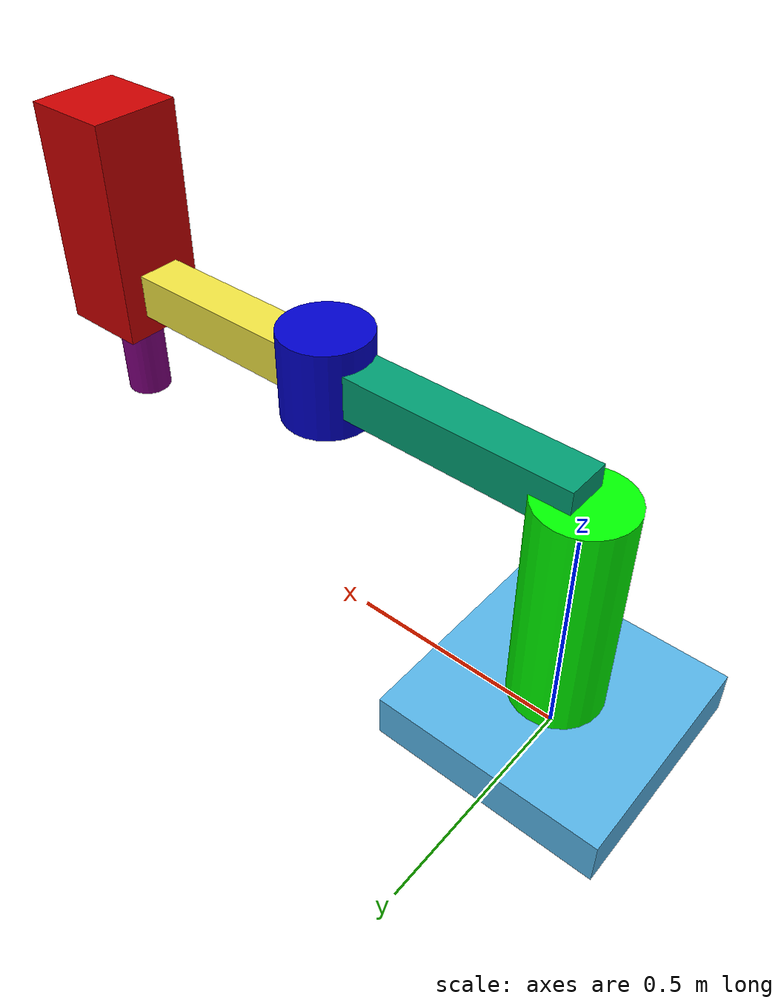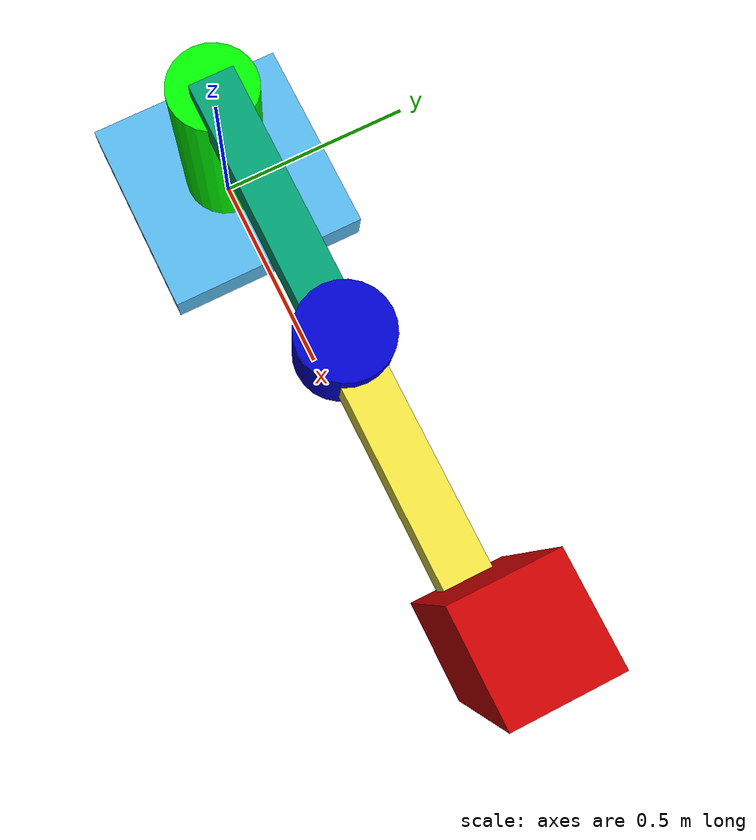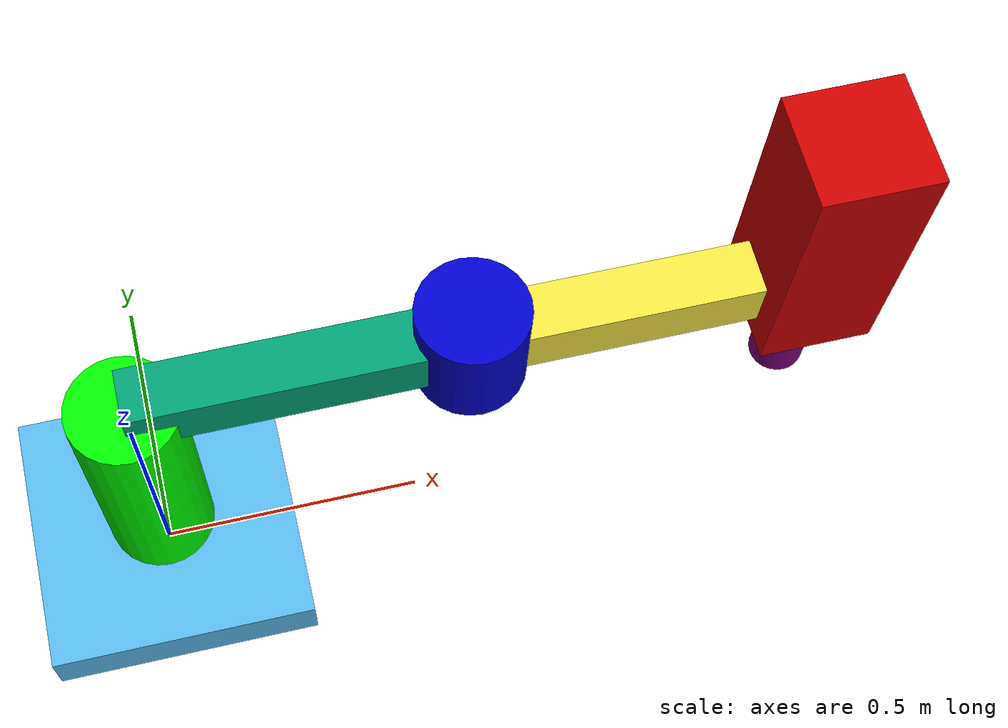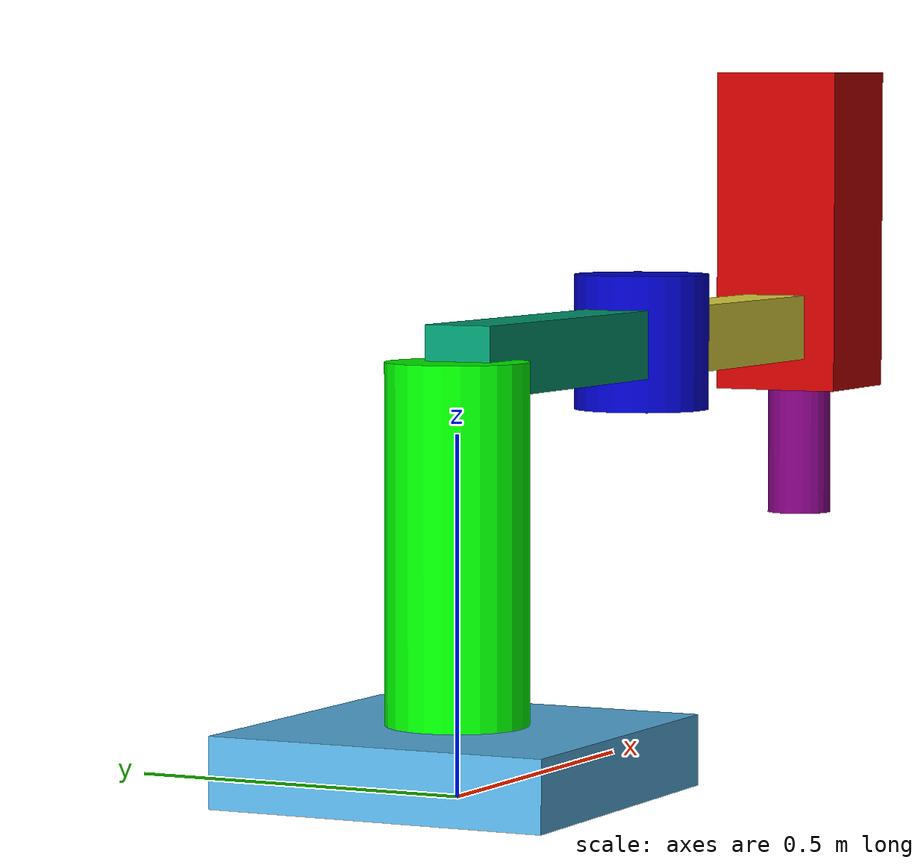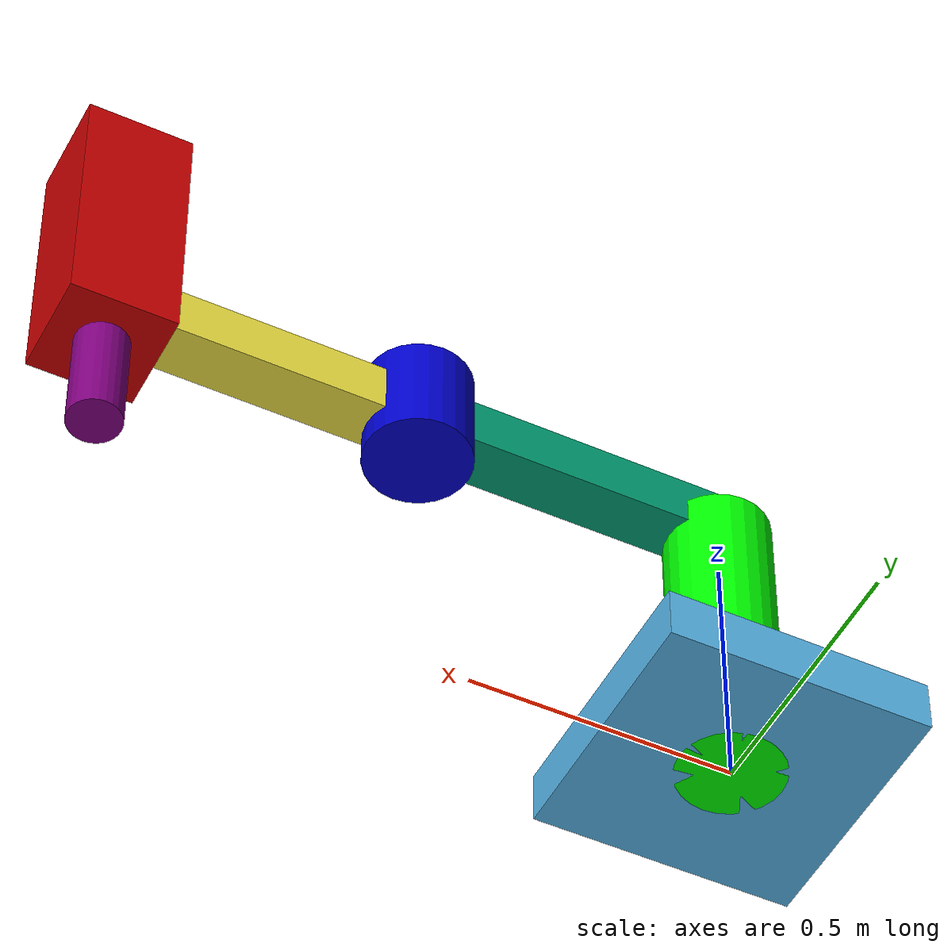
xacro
<?xml version="1.0"?>
<robot name="scara_robot" xmlns:xacro="http://www.ros.org/wiki/xacro">

    <!-- Joint colors-->
    <material name="blue">
        <color rgba="0 0 0.8 1"/>
    </material>
    <material name="red">
        <color rgba="0.8 0 0 1"/>
    </material>
    <material name="green">
        <color rgba="0.0 1.0 0.0 1.0"/>
    </material>
    <material name="purple">
        <color rgba="0.5 0.0 0.5 1.0"/>
    </material>

    <!-- Robot dimensions -->
    <xacro:property name="d1" value=".6" />
    <xacro:property name="a1" value=".6" />
    <xacro:property name="a2" value=".6" />
    <xacro:property name="d3" value=".3" />

    <!-- EE cylinder measurement, radius and length -->
    <xacro:property name="ee_r" value=".05" />
    <xacro:property name="ee_l" value="${d3}" />

    <!-- Default revolute joint radius and length-->
    <xacro:property name="cyl_joint_r" value=".1" />
    <xacro:property name="cyl_joint_l" value=".2" />

    <!-- Default prismatic length of each side of a square -->
    <xacro:property name="prismatic_link_a" value=".2" />
    <!-- Default prismatic extention limit-->
    <xacro:property name="presmatic_extend_range" value=".3" />

    <!-- Default link arm width of a side of a square-->
    <xacro:property name="link_arm_a" value=".1" />

    <!--
            Model setup
    -->

    <!-- Base of the robot -->
    <xacro:property name="base_link_l" value=".5" />
    <xacro:property name="base_link_w" value=".5" />
    <xacro:property name="base_link_h" value="0.1" />

    <!-- Joint 1 visual-->
    <xacro:property name="link1_l" value="${d1}" />
    <xacro:property name="link1_r" value="${cyl_joint_r}" />
    <!-- DH data of joint 1-->
    <xacro:property name="link1_theta" value="0" />
    <xacro:property name="link1_d" value="0" />
    <xacro:property name="link1_a" value="0" />
    <xacro:property name="link1_alpha" value="0" />
    <!-- Joint 1 arm visual-->
    <xacro:property name="link1_arm_l" value="${a1}" />
    <xacro:property name="link1_arm_w" value="${link_arm_a}" />
    <xacro:property name="link1_arm_h" value="${link_arm_a}" />

    <!-- Joint 2 visual-->
    <xacro:property name="link2_l" value="${cyl_joint_l}" />
    <xacro:property name="link2_r" value="${cyl_joint_r}" />
    <!-- DH data of joint 2-->
    <xacro:property name="link2_theta" value="0" />
    <xacro:property name="link2_d" value="0" />
    <xacro:property name="link2_a" value="${a1}" />
    <xacro:property name="link2_alpha" value="0" />
    <!-- Joint 2 arm visual-->
    <xacro:property name="link2_arm_l" value="${a2}" />
    <xacro:property name="link2_arm_w" value="${link_arm_a}" />
    <xacro:property name="link2_arm_h" value="${link_arm_a}" />

    <!-- Joint 3 visual-->
    <xacro:property name="link3_arm_l" value="${prismatic_link_a}" />
    <xacro:property name="link3_arm_w" value="${prismatic_link_a}" />
    <xacro:property name="link3_arm_h" value="${prismatic_link_a + presmatic_extend_range}" />
    <!-- DH data of joint 3-->
    <xacro:property name="link3_theta" value="0" />
    <xacro:property name="link3_d" value="0" />
    <xacro:property name="link3_a" value="${a2}" />
    <xacro:property name="link3_alpha" value="0" />
    <!-- Prismatic extend limit -->
    <xacro:property name="link3_limit_lower" value="0" />
    <xacro:property name="link3_limit_upper" value="${presmatic_extend_range}" />

    <!-- EE 4 visual -->
    <xacro:property name="link4_l" value="${ee_l}" />
    <xacro:property name="link4_r" value="${ee_r}" />
    <!-- DH data of joint 4 -->
    <xacro:property name="link4_theta" value="0" />
    <xacro:property name="link4_d" value="${-d3}" />
    <xacro:property name="link4_a" value="0" />
    <xacro:property name="link4_alpha" value="${pi}" />

    <!--
            Inertial template
    -->
    <xacro:macro name="inertial_box" params="mass x y z *origin">
        <inertial>
            <xacro:insert_block name="origin"/>
            <mass value="${mass}" />
            <inertia ixx="${(1/12) * mass * (y*y+z*z)}" ixy="0.0" ixz="0.0"
                    iyy="${(1/12) * mass * (x*x+z*z)}" iyz="0.0"
                    izz="${(1/12) * mass * (x*x+y*y)}" />
        </inertial>
    </xacro:macro>

    <xacro:macro name="inertial_cylinder" params="mass length radius *origin">
        <inertial>
            <xacro:insert_block name="origin"/>
            <mass value="${mass}" />
            <inertia ixx="${(1/12) * mass * (3*radius*radius + length*length)}" ixy="0.0" ixz="0.0"
                    iyy="${(1/12) * mass * (3*radius*radius + length*length)}" iyz="0.0"
                    izz="${(1/2) * mass * (radius*radius)}" />
        </inertial>
    </xacro:macro>

    <!--
            Modeling the robot
    -->

    <link name="world_link"/>

    <joint name="world_to_base" type="fixed">
    <parent link="world_link"/>
    <child link="base_link"/>
    <origin xyz="0 0 0" rpy="0 0 0"/>
    </joint>

    <link name="base_link">
        <visual>
            <origin rpy="0 0 0" xyz="0 0 ${base_link_h/2}" />
            <geometry>
                <box size="${base_link_l} ${base_link_w} ${base_link_h}" />
            </geometry>
        </visual>
        <collision>
            <origin rpy="0 0 0" xyz="0 0 ${base_link_h/2}" />
            <geometry>
                <box size="${base_link_l} ${base_link_w} ${base_link_h}" />
            </geometry>
        </collision>
        <xacro:inertial_box mass="100" x="${base_link_l}" y="${base_link_w}" z="${base_link_h}">
            <origin rpy="0 0 0" xyz="0 0 ${base_link_h/2}" />
        </xacro:inertial_box>
    </link>

    <joint name="joint1" type="revolute">
        <parent link="base_link" />
        <child link="link1" />
        <origin rpy="0 0 0" xyz="0 0 ${link1_d}" />
        <axis xyz="0 0 1" />
        <limit lower="${-5*pi/6}" upper="${5*pi/6}" effort="100" velocity="5.0" />
        <dynamics damping="0.1" friction="0.0"/>
    </joint>

    <link name="link1">
        <!-- Cylinder joint visual -->
        <visual>
            <origin rpy="0 0 0" xyz="0 0 ${link1_l/2}" />
            <geometry>
                <cylinder length="${link1_l}" radius="${link1_r}" />
            </geometry>
            <material name="green"/>
        </visual>
        <collision>
            <origin rpy="0 0 0" xyz="0 0 ${link1_l/2 + base_link_h/2}" />
            <geometry>
                <cylinder length="${link1_l - base_link_h}" radius="${link1_r}" />
            </geometry>
        </collision>
        <xacro:inertial_cylinder mass="1" length="${link1_l}" radius="${link1_r}">
            <origin rpy="0 0 0" xyz="0 0 ${link1_l/2}" />
        </xacro:inertial_cylinder>

        <!-- Arm visual -->
        <visual>
            <origin rpy="0 0 0" xyz="${link1_arm_l/2} 0 ${link1_l}" />
            <geometry>
                <box size="${link1_arm_l} ${link1_arm_w} ${link1_arm_h}" />
            </geometry>
        </visual>
        <collision>
            <origin rpy="0 0 0" xyz="${link1_arm_l/2} 0 ${link1_l}" />
            <geometry>
                <box size="${link1_arm_l - cyl_joint_r * 2} ${link1_arm_w} ${link1_arm_h}" />
            </geometry>
        </collision>
        <xacro:inertial_box mass="0.5" x="${link1_arm_l}" y="${link1_arm_w}" z="${link1_arm_h}">
            <origin rpy="0 0 0" xyz="${link1_arm_l/2} 0 0" />
        </xacro:inertial_box>
    </link>

    <link name="link2">

        <!-- Cylinder joint  visual -->
        <visual>
            <origin rpy="0 0 0" xyz="0 0 0" />
            <geometry>
                <cylinder length="${link2_l}" radius="${link2_r}" />
            </geometry>
            <material name="blue"/>
        </visual>
        <collision>
            <origin rpy="0 0 0" xyz="0 0 0" />
            <geometry>
                <cylinder length="${link2_l}" radius="${link2_r}" />
            </geometry>
        </collision>
        <xacro:inertial_cylinder mass="0.5" length="${link2_l}" radius="${link2_r}">
            <origin rpy="0 0 0" xyz="0 0 0" />
        </xacro:inertial_cylinder>

        <!-- Arm visual -->
        <visual>
            <origin rpy="0 0 0" xyz="${link2_arm_l/2} 0 0" />
            <geometry>
                <box size="${link2_arm_l} ${link2_arm_w} ${link2_arm_h}" />
            </geometry>
        </visual>
        <collision>
            <origin rpy="0 0 0" xyz="${link2_arm_l/2} 0 0" />
            <geometry>
                <box size="${link2_arm_l - prismatic_link_a} ${link2_arm_w} ${link2_arm_h}" />
            </geometry>
        </collision>
        <xacro:inertial_box mass="0.5" x="${link2_arm_l}" y="${link2_arm_w}" z="${link2_arm_h}">
            <origin rpy="0 0 0" xyz="${link2_arm_l/2} 0 0" />
        </xacro:inertial_box>
    </link>

    <joint name="joint2" type="revolute">
        <parent link="link1" />
        <child link="link2" />
        <origin rpy="0 0 0" xyz="${a1} 0 ${d1}" />
        <limit lower="${-pi/2}" upper="${pi/2}" effort="100" velocity="1.0" />
        <axis xyz="0 0 1" />
    </joint>

    <link name="link3">
        <!-- Prismatic joint visual -->
        <visual>
            <origin rpy="0 0 0" xyz="0 0 ${link3_arm_h/2 - prismatic_link_a/2}" />
            <geometry>
                <box size="${link3_arm_l} ${link3_arm_w} ${link3_arm_h}" />
            </geometry>
            <material name="red"/>
        </visual>
        <collision>
            <origin rpy="0 0 0" xyz="0 0 ${link3_arm_h/2 - prismatic_link_a/2}" />
            <geometry>
                <box size="${link3_arm_l} ${link3_arm_w} ${link3_arm_h}" />
            </geometry>
        </collision>
        <xacro:inertial_box mass="0.5" x="${link3_arm_l}" y="${link3_arm_w}" z="${link3_arm_h}">
            <origin rpy="0 0 0" xyz="0 0 ${link3_arm_h/2 - prismatic_link_a/2}" />
        </xacro:inertial_box>
    </link>

    <joint name="joint3" type="prismatic">
        <parent link="link2" />
        <child link="link3" />
        <origin rpy="0 0 0" xyz="${link3_a} 0 0" />
        <limit lower="${link3_limit_lower}" upper="${link3_limit_upper}" effort="100" velocity="5" />
        <axis xyz="0 0 -1" />
    </joint>

    <link name="link4">

        <!-- Cylinder visual -->
        <visual>
            <origin rpy="0 0 0" xyz="0 0 ${-link4_l/2}" />
            <geometry>
                <cylinder length="${link4_l}" radius="${link4_r}" />
            </geometry>
            <material name="purple"/>
        </visual>
        <collision>
            <origin rpy="0 0 0" xyz="0 0 ${-(link4_l - prismatic_link_a/2)/2}" />
            <geometry>
                <cylinder length="${link4_l - prismatic_link_a/2}" radius="${link4_r}" />
            </geometry>
        </collision>
        <xacro:inertial_cylinder mass="0.5" length="${link4_l}" radius="${link4_r}">
            <origin rpy="0 0 0" xyz="0 0 ${-link4_l/2}" />
        </xacro:inertial_cylinder>
    </link>

    <joint name="joint4" type="fixed">
        <parent link="link3" />
        <child link="link4" />
        <origin rpy="${link4_alpha} 0 ${link4_theta}" xyz="0 0 ${link4_d}" />
        <axis xyz="0 0 1" />
    </joint>

    <!--
            Gazebo configuration
     -->

    <!--
        Use for GUI control,
        comment out for control via ros2 trajectory
    -->
    <gazebo>
        <plugin filename="gz-sim-joint-position-controller-system"
            name="gz::sim::systems::JointPositionController">
            <joint_name>joint1</joint_name>
            <use_velocity_commands>true</use_velocity_commands>
            <cmd_max>1.0</cmd_max>
        </plugin>

        <plugin filename="gz-sim-joint-position-controller-system"
            name="gz::sim::systems::JointPositionController">
            <joint_name>joint2</joint_name>
            <use_velocity_commands>true</use_velocity_commands>
            <cmd_max>1.0</cmd_max>
        </plugin>

        <plugin filename="gz-sim-joint-position-controller-system"
            name="gz::sim::systems::JointPositionController">
            <joint_name>joint3</joint_name>
            <use_velocity_commands>true</use_velocity_commands>
            <cmd_max>1.0</cmd_max>
        </plugin>
    </gazebo>

    <!-- Set joint4 to publish, it is fixed joint which will not publish by default-->
    <gazebo reference="joint4">
        <preserveFixedJoint>true</preserveFixedJoint>
    </gazebo>

    <gazebo>
        <plugin
            filename="gz-sim-joint-state-publisher-system"
            name="gz::sim::systems::JointStatePublisher">
            <topic>/joint_states</topic>
        </plugin>

        <plugin
            filename="gz-sim-pose-publisher-system"
            name="gz::sim::systems::PosePublisher">
            <publish_link_pose>true</publish_link_pose>
            <publish_model_pose>true</publish_model_pose>
            <publish_sensor_pose>false</publish_sensor_pose>
            <publish_collision_pose>false</publish_collision_pose>
            <publish_visual_pose>false</publish_visual_pose>
            <publish_nested_model_pose>false</publish_nested_model_pose>
            <use_pose_vector_msg>true</use_pose_vector_msg>
        </plugin>

        <!--
                Joint Trajectory Controller
        -->

    </gazebo>
</robot>
